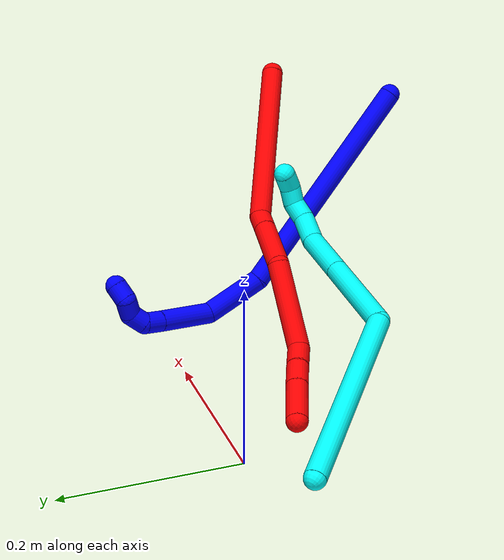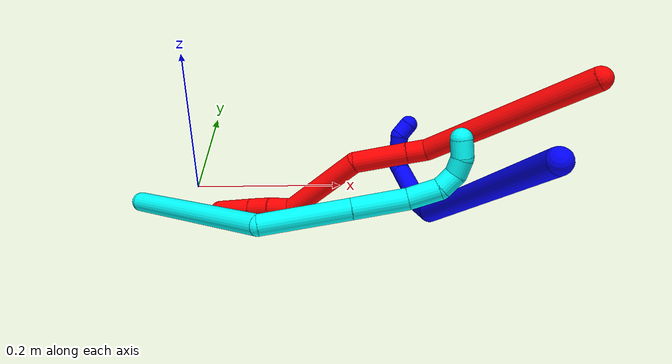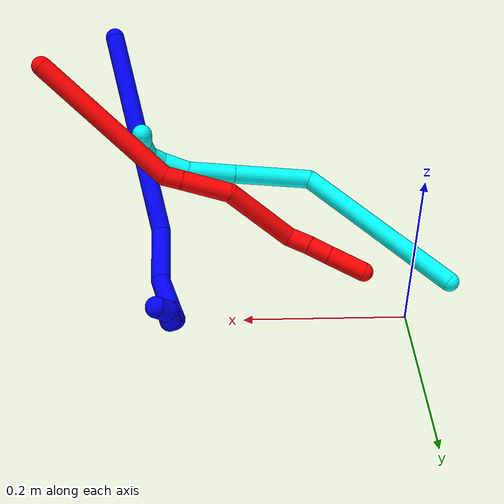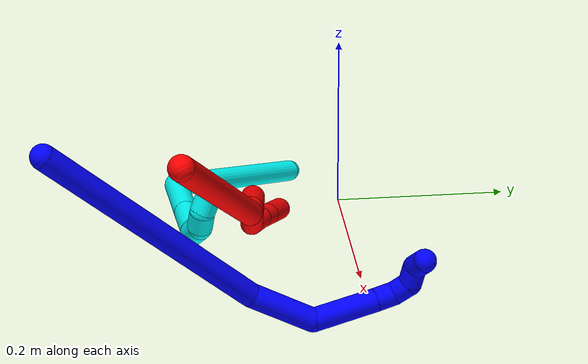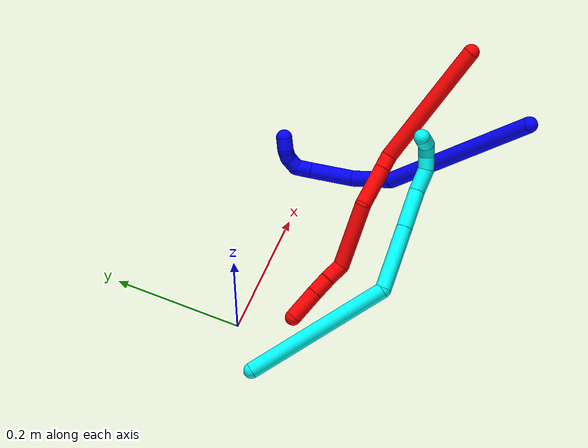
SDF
<sdf version="1.7">
 <world name="default">
  <model name="photoneo_s_sensor">
   <static>1</static>
   <pose>0 0 2 1.57079 1.57079 3.14159</pose>
   <link name="link">
    <inertial><mass>0.1</mass></inertial>
    <sensor name="sensor" type="depth">
     <update_rate>30</update_rate>
     <camera>
      <horizontal_fov>1.22</horizontal_fov>
      <image><width>1920</width><height>1200</height><format>B8G8R8</format></image>
      <clip><near>0.1</near><far>4</far></clip>
      <depth_camera><output>points</output></depth_camera>
     </camera>
     <plugin name="camera_plugin" filename="libgazebo_ros_depth_camera.so">
      <baseline>0.2</baseline>
      <alwaysOn>1</alwaysOn>
      <updateRate>0.0</updateRate>
      <cameraName>camera_ir</cameraName>
      <imageTopicName>/camera/color/image_raw</imageTopicName>
      <cameraInfoTopicName>/camera/color/camera_info</cameraInfoTopicName>
      <depthImageTopicName>/camera/depth/image_raw</depthImageTopicName>
      <depthImageCameraInfoTopicName>/camera/depth/camera_info</depthImageCameraInfoTopicName>
      <pointCloudTopicName>/camera/depth/points</pointCloudTopicName>
      <frameName>fr_optical</frameName>
      <pointCloudCutoff>0.1</pointCloudCutoff>
      <pointCloudCutoffMax>2.0</pointCloudCutoffMax>
      <distortionK1>0</distortionK1>
      <distortionK2>0</distortionK2>
      <distortionK3>0</distortionK3>
      <distortionT1>0</distortionT1>
      <distortionT2>0</distortionT2>
      <CxPrime>0</CxPrime>
      <Cx>0</Cx>
      <Cy>0</Cy>
      <focalLength>0</focalLength>
      <hackBaseline>0</hackBaseline>
     </plugin>
    </sensor>
   </link>
  </model>
  <model name="bin">
   <static>1</static>
   <link name="bottom">
    <collision name="collision-bottom">
     <pose>0 0 -0.01 0 -0 0</pose>
     <geometry><box><size>0.8 0.6 0.02</size></box></geometry>
     <surface>
      <friction><ode><mu>100</mu><mu2>100</mu2></ode></friction>
      <contact><collide_bitmask>65535</collide_bitmask></contact>
     </surface>
    </collision>
   </link>
   <link name="west_wall">
    <collision name="collision-west_wall">
     <pose>-0.41 0 0.1 0 -0 0</pose>
     <geometry><box><size>0.02 0.6 0.2</size></box></geometry>
     <surface>
      <friction><ode><mu>100</mu><mu2>100</mu2></ode></friction>
      <contact><collide_bitmask>65535</collide_bitmask></contact>
     </surface>
    </collision>
   </link>
   <link name="east_wall">
    <collision name="collision-east_wall">
     <pose>0.41 0 0.1 0 -0 0</pose>
     <geometry><box><size>0.02 0.6 0.2</size></box></geometry>
     <surface>
      <friction><ode><mu>100</mu><mu2>100</mu2></ode></friction>
      <contact><collide_bitmask>65535</collide_bitmask></contact>
     </surface>
    </collision>
   </link>
   <link name="south_wall">
    <collision name="collision-south_wall">
     <pose>0 -0.31 0.1 0 -0 0</pose>
     <geometry><box><size>0.8 0.02 0.2</size></box></geometry>
     <surface>
      <friction><ode><mu>100</mu><mu2>100</mu2></ode></friction>
      <contact><collide_bitmask>65535</collide_bitmask></contact>
     </surface>
    </collision>
   </link>
   <link name="north_wall">
    <collision name="collision-north_wall">
     <pose>0 0.31 0.1 0 -0 0</pose>
     <geometry><box><size>0.8 0.02 0.2</size></box></geometry>
     <surface>
      <friction><ode><mu>100</mu><mu2>100</mu2></ode></friction>
      <contact><collide_bitmask>65535</collide_bitmask></contact>
     </surface>
    </collision>
   </link>
  </model>
  <model name="1">
   <static>0</static>
   <link name="1">
    <collision name="collision-cylinder-e_1_1_4">
     <pose>0.068487 -0.022817 0.118233 0.190639 0.517133 0.050564</pose>
     <geometry><cylinder><radius>0.0125</radius><length>0.277057</length></cylinder></geometry>
     <surface>
      <friction><ode><mu>1.16</mu><mu2>1.16</mu2><slip1>0</slip1><slip2>0</slip2></ode></friction>
      <contact><ode><kp>1e+06</kp><kd>1</kd><max_vel>0</max_vel><min_depth>0.001</min_depth></ode></contact>
     </surface>
    </collision>
    <visual name="visual-cylinder-e_1_1_4">
     <pose>0.068487 -0.022817 0.118233 0.190639 0.517133 0.050564</pose>
     <geometry><cylinder><radius>0.0125</radius><length>0.277057</length></cylinder></geometry>
     <material><ambient>0 0 1 1</ambient></material>
    </visual>
    <collision name="collision-cylinder-e_2_4_5">
     <pose>0.15716 -0.039245 0.265296 -0.218069 0.599624 -0.067654</pose>
     <geometry><cylinder><radius>0.0125</radius><length>0.071538</length></cylinder></geometry>
     <surface>
      <friction><ode><mu>1.16</mu><mu2>1.16</mu2><slip1>0</slip1><slip2>0</slip2></ode></friction>
      <contact><ode><kp>1e+06</kp><kd>1</kd><max_vel>0</max_vel><min_depth>0.001</min_depth></ode></contact>
     </surface>
    </collision>
    <visual name="visual-cylinder-e_2_4_5">
     <pose>0.15716 -0.039245 0.265296 -0.218069 0.599624 -0.067654</pose>
     <geometry><cylinder><radius>0.0125</radius><length>0.071538</length></cylinder></geometry>
     <material><ambient>0 0 1 1</ambient></material>
    </visual>
    <collision name="collision-cylinder-e_3_5_6">
     <pose>0.208787 -0.022091 0.303333 -0.863297 1.14748 -0.578648</pose>
     <geometry><cylinder><radius>0.0125</radius><length>0.068971</length></cylinder></geometry>
     <surface>
      <friction><ode><mu>1.16</mu><mu2>1.16</mu2><slip1>0</slip1><slip2>0</slip2></ode></friction>
      <contact><ode><kp>1e+06</kp><kd>1</kd><max_vel>0</max_vel><min_depth>0.001</min_depth></ode></contact>
     </surface>
    </collision>
    <visual name="visual-cylinder-e_3_5_6">
     <pose>0.208787 -0.022091 0.303333 -0.863297 1.14748 -0.578648</pose>
     <geometry><cylinder><radius>0.0125</radius><length>0.068971</length></cylinder></geometry>
     <material><ambient>0 0 1 1</ambient></material>
    </visual>
    <collision name="collision-cylinder-e_4_6_7">
     <pose>0.25038 -0.007744 0.31514 -0.942678 1.15973 -0.644359</pose>
     <geometry><cylinder><radius>0.0125</radius><length>0.022148</length></cylinder></geometry>
     <surface>
      <friction><ode><mu>1.16</mu><mu2>1.16</mu2><slip1>0</slip1><slip2>0</slip2></ode></friction>
      <contact><ode><kp>1e+06</kp><kd>1</kd><max_vel>0</max_vel><min_depth>0.001</min_depth></ode></contact>
     </surface>
    </collision>
    <visual name="visual-cylinder-e_4_6_7">
     <pose>0.25038 -0.007744 0.31514 -0.942678 1.15973 -0.644359</pose>
     <geometry><cylinder><radius>0.0125</radius><length>0.022148</length></cylinder></geometry>
     <material><ambient>0 0 1 1</ambient></material>
    </visual>
    <collision name="collision-cylinder-e_5_7_8">
     <pose>0.266692 0.003777 0.316395 -1.73861 0.653049 -0.762461</pose>
     <geometry><cylinder><radius>0.0125</radius><length>0.02028</length></cylinder></geometry>
     <surface>
      <friction><ode><mu>1.16</mu><mu2>1.16</mu2><slip1>0</slip1><slip2>0</slip2></ode></friction>
      <contact><ode><kp>1e+06</kp><kd>1</kd><max_vel>0</max_vel><min_depth>0.001</min_depth></ode></contact>
     </surface>
    </collision>
    <visual name="visual-cylinder-e_5_7_8">
     <pose>0.266692 0.003777 0.316395 -1.73861 0.653049 -0.762461</pose>
     <geometry><cylinder><radius>0.0125</radius><length>0.02028</length></cylinder></geometry>
     <material><ambient>0 0 1 1</ambient></material>
    </visual>
    <collision name="collision-cylinder-e_6_8_9">
     <pose>0.276778 0.01747 0.307872 -2.46601 0.403267 -1.05408</pose>
     <geometry><cylinder><radius>0.0125</radius><length>0.020003</length></cylinder></geometry>
     <surface>
      <friction><ode><mu>1.16</mu><mu2>1.16</mu2><slip1>0</slip1><slip2>0</slip2></ode></friction>
      <contact><ode><kp>1e+06</kp><kd>1</kd><max_vel>0</max_vel><min_depth>0.001</min_depth></ode></contact>
     </surface>
    </collision>
    <visual name="visual-cylinder-e_6_8_9">
     <pose>0.276778 0.01747 0.307872 -2.46601 0.403267 -1.05408</pose>
     <geometry><cylinder><radius>0.0125</radius><length>0.020003</length></cylinder></geometry>
     <material><ambient>0 0 1 1</ambient></material>
    </visual>
    <collision name="collision-cylinder-e_7_9_2">
     <pose>0.281309 0.032905 0.298263 -1.81667 0.060602 -0.077674</pose>
     <geometry><cylinder><radius>0.0125</radius><length>0.020003</length></cylinder></geometry>
     <surface>
      <friction><ode><mu>1.16</mu><mu2>1.16</mu2><slip1>0</slip1><slip2>0</slip2></ode></friction>
      <contact><ode><kp>1e+06</kp><kd>1</kd><max_vel>0</max_vel><min_depth>0.001</min_depth></ode></contact>
     </surface>
    </collision>
    <visual name="visual-cylinder-e_7_9_2">
     <pose>0.281309 0.032905 0.298263 -1.81667 0.060602 -0.077674</pose>
     <geometry><cylinder><radius>0.0125</radius><length>0.020003</length></cylinder></geometry>
     <material><ambient>0 0 1 1</ambient></material>
    </visual>
    <collision name="collision-sphere-2">
     <pose>0.281915 0.042588 0.295833 0 -0 0</pose>
     <geometry><sphere><radius>0.0125</radius></sphere></geometry>
     <surface>
      <friction><ode><mu>1.16</mu><mu2>1.16</mu2><slip1>0</slip1><slip2>0</slip2></ode></friction>
      <contact><ode><kp>1e+06</kp><kd>1</kd><max_vel>0</max_vel><min_depth>0.001</min_depth></ode></contact>
     </surface>
    </collision>
    <visual name="visual-sphere-2">
     <pose>0.281915 0.042588 0.295833 0 -0 0</pose>
     <geometry><sphere><radius>0.0125</radius></sphere></geometry>
     <material><ambient>0 0 1 1</ambient></material>
    </visual>
    <collision name="collision-sphere-9">
     <pose>0.280703 0.023222 0.300693 0 -0 0</pose>
     <geometry><sphere><radius>0.0125</radius></sphere></geometry>
     <surface>
      <friction><ode><mu>1.16</mu><mu2>1.16</mu2><slip1>0</slip1><slip2>0</slip2></ode></friction>
      <contact><ode><kp>1e+06</kp><kd>1</kd><max_vel>0</max_vel><min_depth>0.001</min_depth></ode></contact>
     </surface>
    </collision>
    <visual name="visual-sphere-9">
     <pose>0.280703 0.023222 0.300693 0 -0 0</pose>
     <geometry><sphere><radius>0.0125</radius></sphere></geometry>
     <material><ambient>0 0 1 1</ambient></material>
    </visual>
    <collision name="collision-sphere-4">
     <pose>0.136974 -0.045634 0.236466 0 -0 0</pose>
     <geometry><sphere><radius>0.0125</radius></sphere></geometry>
     <surface>
      <friction><ode><mu>1.16</mu><mu2>1.16</mu2><slip1>0</slip1><slip2>0</slip2></ode></friction>
      <contact><ode><kp>1e+06</kp><kd>1</kd><max_vel>0</max_vel><min_depth>0.001</min_depth></ode></contact>
     </surface>
    </collision>
    <visual name="visual-sphere-4">
     <pose>0.136974 -0.045634 0.236466 0 -0 0</pose>
     <geometry><sphere><radius>0.0125</radius></sphere></geometry>
     <material><ambient>0 0 1 1</ambient></material>
    </visual>
    <collision name="collision-sphere-1">
     <geometry><sphere><radius>0.0125</radius></sphere></geometry>
     <surface>
      <friction><ode><mu>1.16</mu><mu2>1.16</mu2><slip1>0</slip1><slip2>0</slip2></ode></friction>
      <contact><ode><kp>1e+06</kp><kd>1</kd><max_vel>0</max_vel><min_depth>0.001</min_depth></ode></contact>
     </surface>
    </collision>
    <visual name="visual-sphere-1">
     <geometry><sphere><radius>0.0125</radius></sphere></geometry>
     <material><ambient>0 0 1 1</ambient></material>
    </visual>
    <collision name="collision-sphere-8">
     <pose>0.272854 0.011717 0.31505 0 -0 0</pose>
     <geometry><sphere><radius>0.0125</radius></sphere></geometry>
     <surface>
      <friction><ode><mu>1.16</mu><mu2>1.16</mu2><slip1>0</slip1><slip2>0</slip2></ode></friction>
      <contact><ode><kp>1e+06</kp><kd>1</kd><max_vel>0</max_vel><min_depth>0.001</min_depth></ode></contact>
     </surface>
    </collision>
    <visual name="visual-sphere-8">
     <pose>0.272854 0.011717 0.31505 0 -0 0</pose>
     <geometry><sphere><radius>0.0125</radius></sphere></geometry>
     <material><ambient>0 0 1 1</ambient></material>
    </visual>
    <collision name="collision-sphere-5">
     <pose>0.177345 -0.032857 0.294125 0 -0 0</pose>
     <geometry><sphere><radius>0.0125</radius></sphere></geometry>
     <surface>
      <friction><ode><mu>1.16</mu><mu2>1.16</mu2><slip1>0</slip1><slip2>0</slip2></ode></friction>
      <contact><ode><kp>1e+06</kp><kd>1</kd><max_vel>0</max_vel><min_depth>0.001</min_depth></ode></contact>
     </surface>
    </collision>
    <visual name="visual-sphere-5">
     <pose>0.177345 -0.032857 0.294125 0 -0 0</pose>
     <geometry><sphere><radius>0.0125</radius></sphere></geometry>
     <material><ambient>0 0 1 1</ambient></material>
    </visual>
    <collision name="collision-sphere-6">
     <pose>0.240228 -0.011325 0.31254 0 -0 0</pose>
     <geometry><sphere><radius>0.0125</radius></sphere></geometry>
     <surface>
      <friction><ode><mu>1.16</mu><mu2>1.16</mu2><slip1>0</slip1><slip2>0</slip2></ode></friction>
      <contact><ode><kp>1e+06</kp><kd>1</kd><max_vel>0</max_vel><min_depth>0.001</min_depth></ode></contact>
     </surface>
    </collision>
    <visual name="visual-sphere-6">
     <pose>0.240228 -0.011325 0.31254 0 -0 0</pose>
     <geometry><sphere><radius>0.0125</radius></sphere></geometry>
     <material><ambient>0 0 1 1</ambient></material>
    </visual>
    <collision name="collision-sphere-7">
     <pose>0.260531 -0.004164 0.31774 0 -0 0</pose>
     <geometry><sphere><radius>0.0125</radius></sphere></geometry>
     <surface>
      <friction><ode><mu>1.16</mu><mu2>1.16</mu2><slip1>0</slip1><slip2>0</slip2></ode></friction>
      <contact><ode><kp>1e+06</kp><kd>1</kd><max_vel>0</max_vel><min_depth>0.001</min_depth></ode></contact>
     </surface>
    </collision>
    <visual name="visual-sphere-7">
     <pose>0.260531 -0.004164 0.31774 0 -0 0</pose>
     <geometry><sphere><radius>0.0125</radius></sphere></geometry>
     <material><ambient>0 0 1 1</ambient></material>
    </visual>
    <inertial>
     <pose>0.133471 -0.01948 0.196356 0 -0 0</pose>
     <mass>0.5</mass>
     <inertia>
      <ixx>0.001678</ixx>
      <ixy>0</ixy>
      <ixz>0</ixz>
      <iyy>0.001889</iyy>
      <iyz>0</iyz>
      <izz>-0.000633</izz>
     </inertia>
    </inertial>
   </link>
   <pose>0.369768 -0.318902 0.234866 2.65435 -0.247799 2.24525</pose>
  </model>
  <model name="2">
   <static>0</static>
   <link name="2">
    <collision name="collision-cylinder-e_1_1_4">
     <pose>-0.09896 0.009844 0.02065 -0.444846 -1.34361 0.355888</pose>
     <geometry><cylinder><radius>0.0125</radius><length>0.20314</length></cylinder></geometry>
     <surface>
      <friction><ode><mu>1.16</mu><mu2>1.16</mu2><slip1>0</slip1><slip2>0</slip2></ode></friction>
      <contact><ode><kp>1e+06</kp><kd>1</kd><max_vel>0</max_vel><min_depth>0.001</min_depth></ode></contact>
     </surface>
    </collision>
    <visual name="visual-cylinder-e_1_1_4">
     <pose>-0.09896 0.009844 0.02065 -0.444846 -1.34361 0.355888</pose>
     <geometry><cylinder><radius>0.0125</radius><length>0.20314</length></cylinder></geometry>
     <material><ambient>1 0 0 1</ambient></material>
    </visual>
    <collision name="collision-cylinder-e_2_4_5">
     <pose>-0.208937 0.021377 0.038067 -2.66032 -1.25105 2.48657</pose>
     <geometry><cylinder><radius>0.0125</radius><length>0.02321</length></cylinder></geometry>
     <surface>
      <friction><ode><mu>1.16</mu><mu2>1.16</mu2><slip1>0</slip1><slip2>0</slip2></ode></friction>
      <contact><ode><kp>1e+06</kp><kd>1</kd><max_vel>0</max_vel><min_depth>0.001</min_depth></ode></contact>
     </surface>
    </collision>
    <visual name="visual-cylinder-e_2_4_5">
     <pose>-0.208937 0.021377 0.038067 -2.66032 -1.25105 2.48657</pose>
     <geometry><cylinder><radius>0.0125</radius><length>0.02321</length></cylinder></geometry>
     <material><ambient>1 0 0 1</ambient></material>
    </visual>
    <collision name="collision-cylinder-e_3_5_6">
     <pose>-0.24988 0.027774 0.02658 -2.62326 -1.26335 2.44631</pose>
     <geometry><cylinder><radius>0.0125</radius><length>0.062798</length></cylinder></geometry>
     <surface>
      <friction><ode><mu>1.16</mu><mu2>1.16</mu2><slip1>0</slip1><slip2>0</slip2></ode></friction>
      <contact><ode><kp>1e+06</kp><kd>1</kd><max_vel>0</max_vel><min_depth>0.001</min_depth></ode></contact>
     </surface>
    </collision>
    <visual name="visual-cylinder-e_3_5_6">
     <pose>-0.24988 0.027774 0.02658 -2.62326 -1.26335 2.44631</pose>
     <geometry><cylinder><radius>0.0125</radius><length>0.062798</length></cylinder></geometry>
     <material><ambient>1 0 0 1</ambient></material>
    </visual>
    <collision name="collision-cylinder-e_4_6_7">
     <pose>-0.326328 0.052956 0.025137 -1.24967 -1.1365 0.863118</pose>
     <geometry><cylinder><radius>0.0125</radius><length>0.102564</length></cylinder></geometry>
     <surface>
      <friction><ode><mu>1.16</mu><mu2>1.16</mu2><slip1>0</slip1><slip2>0</slip2></ode></friction>
      <contact><ode><kp>1e+06</kp><kd>1</kd><max_vel>0</max_vel><min_depth>0.001</min_depth></ode></contact>
     </surface>
    </collision>
    <visual name="visual-cylinder-e_4_6_7">
     <pose>-0.326328 0.052956 0.025137 -1.24967 -1.1365 0.863118</pose>
     <geometry><cylinder><radius>0.0125</radius><length>0.102564</length></cylinder></geometry>
     <material><ambient>1 0 0 1</ambient></material>
    </visual>
    <collision name="collision-cylinder-e_5_7_8">
     <pose>-0.387399 0.07151 0.029731 2.42762 -1.37183 -2.28647</pose>
     <geometry><cylinder><radius>0.0125</radius><length>0.029684</length></cylinder></geometry>
     <surface>
      <friction><ode><mu>1.16</mu><mu2>1.16</mu2><slip1>0</slip1><slip2>0</slip2></ode></friction>
      <contact><ode><kp>1e+06</kp><kd>1</kd><max_vel>0</max_vel><min_depth>0.001</min_depth></ode></contact>
     </surface>
    </collision>
    <visual name="visual-cylinder-e_5_7_8">
     <pose>-0.387399 0.07151 0.029731 2.42762 -1.37183 -2.28647</pose>
     <geometry><cylinder><radius>0.0125</radius><length>0.029684</length></cylinder></geometry>
     <material><ambient>1 0 0 1</ambient></material>
    </visual>
    <collision name="collision-cylinder-e_6_8_9">
     <pose>-0.41621 0.068749 0.026382 2.50307 -1.47228 -2.4419</pose>
     <geometry><cylinder><radius>0.0125</radius><length>0.028663</length></cylinder></geometry>
     <surface>
      <friction><ode><mu>1.16</mu><mu2>1.16</mu2><slip1>0</slip1><slip2>0</slip2></ode></friction>
      <contact><ode><kp>1e+06</kp><kd>1</kd><max_vel>0</max_vel><min_depth>0.001</min_depth></ode></contact>
     </surface>
    </collision>
    <visual name="visual-cylinder-e_6_8_9">
     <pose>-0.41621 0.068749 0.026382 2.50307 -1.47228 -2.4419</pose>
     <geometry><cylinder><radius>0.0125</radius><length>0.028663</length></cylinder></geometry>
     <material><ambient>1 0 0 1</ambient></material>
    </visual>
    <collision name="collision-cylinder-e_7_9_2">
     <pose>-0.45533 0.067097 0.023027 2.79126 -1.47589 -2.75714</pose>
     <geometry><cylinder><radius>0.0125</radius><length>0.049942</length></cylinder></geometry>
     <surface>
      <friction><ode><mu>1.16</mu><mu2>1.16</mu2><slip1>0</slip1><slip2>0</slip2></ode></friction>
      <contact><ode><kp>1e+06</kp><kd>1</kd><max_vel>0</max_vel><min_depth>0.001</min_depth></ode></contact>
     </surface>
    </collision>
    <visual name="visual-cylinder-e_7_9_2">
     <pose>-0.45533 0.067097 0.023027 2.79126 -1.47589 -2.75714</pose>
     <geometry><cylinder><radius>0.0125</radius><length>0.049942</length></cylinder></geometry>
     <material><ambient>1 0 0 1</ambient></material>
    </visual>
    <collision name="collision-sphere-2">
     <pose>-0.480189 0.066285 0.020805 0 -0 0</pose>
     <geometry><sphere><radius>0.0125</radius></sphere></geometry>
     <surface>
      <friction><ode><mu>1.16</mu><mu2>1.16</mu2><slip1>0</slip1><slip2>0</slip2></ode></friction>
      <contact><ode><kp>1e+06</kp><kd>1</kd><max_vel>0</max_vel><min_depth>0.001</min_depth></ode></contact>
     </surface>
    </collision>
    <visual name="visual-sphere-2">
     <pose>-0.480189 0.066285 0.020805 0 -0 0</pose>
     <geometry><sphere><radius>0.0125</radius></sphere></geometry>
     <material><ambient>1 0 0 1</ambient></material>
    </visual>
    <collision name="collision-sphere-9">
     <pose>-0.430471 0.067909 0.02525 0 -0 0</pose>
     <geometry><sphere><radius>0.0125</radius></sphere></geometry>
     <surface>
      <friction><ode><mu>1.16</mu><mu2>1.16</mu2><slip1>0</slip1><slip2>0</slip2></ode></friction>
      <contact><ode><kp>1e+06</kp><kd>1</kd><max_vel>0</max_vel><min_depth>0.001</min_depth></ode></contact>
     </surface>
    </collision>
    <visual name="visual-sphere-9">
     <pose>-0.430471 0.067909 0.02525 0 -0 0</pose>
     <geometry><sphere><radius>0.0125</radius></sphere></geometry>
     <material><ambient>1 0 0 1</ambient></material>
    </visual>
    <collision name="collision-sphere-4">
     <pose>-0.19792 0.019689 0.041301 0 -0 0</pose>
     <geometry><sphere><radius>0.0125</radius></sphere></geometry>
     <surface>
      <friction><ode><mu>1.16</mu><mu2>1.16</mu2><slip1>0</slip1><slip2>0</slip2></ode></friction>
      <contact><ode><kp>1e+06</kp><kd>1</kd><max_vel>0</max_vel><min_depth>0.001</min_depth></ode></contact>
     </surface>
    </collision>
    <visual name="visual-sphere-4">
     <pose>-0.19792 0.019689 0.041301 0 -0 0</pose>
     <geometry><sphere><radius>0.0125</radius></sphere></geometry>
     <material><ambient>1 0 0 1</ambient></material>
    </visual>
    <collision name="collision-sphere-1">
     <geometry><sphere><radius>0.0125</radius></sphere></geometry>
     <surface>
      <friction><ode><mu>1.16</mu><mu2>1.16</mu2><slip1>0</slip1><slip2>0</slip2></ode></friction>
      <contact><ode><kp>1e+06</kp><kd>1</kd><max_vel>0</max_vel><min_depth>0.001</min_depth></ode></contact>
     </surface>
    </collision>
    <visual name="visual-sphere-1">
     <geometry><sphere><radius>0.0125</radius></sphere></geometry>
     <material><ambient>1 0 0 1</ambient></material>
    </visual>
    <collision name="collision-sphere-8">
     <pose>-0.401948 0.069589 0.027513 0 -0 0</pose>
     <geometry><sphere><radius>0.0125</radius></sphere></geometry>
     <surface>
      <friction><ode><mu>1.16</mu><mu2>1.16</mu2><slip1>0</slip1><slip2>0</slip2></ode></friction>
      <contact><ode><kp>1e+06</kp><kd>1</kd><max_vel>0</max_vel><min_depth>0.001</min_depth></ode></contact>
     </surface>
    </collision>
    <visual name="visual-sphere-8">
     <pose>-0.401948 0.069589 0.027513 0 -0 0</pose>
     <geometry><sphere><radius>0.0125</radius></sphere></geometry>
     <material><ambient>1 0 0 1</ambient></material>
    </visual>
    <collision name="collision-sphere-5">
     <pose>-0.219954 0.023066 0.034834 0 -0 0</pose>
     <geometry><sphere><radius>0.0125</radius></sphere></geometry>
     <surface>
      <friction><ode><mu>1.16</mu><mu2>1.16</mu2><slip1>0</slip1><slip2>0</slip2></ode></friction>
      <contact><ode><kp>1e+06</kp><kd>1</kd><max_vel>0</max_vel><min_depth>0.001</min_depth></ode></contact>
     </surface>
    </collision>
    <visual name="visual-sphere-5">
     <pose>-0.219954 0.023066 0.034834 0 -0 0</pose>
     <geometry><sphere><radius>0.0125</radius></sphere></geometry>
     <material><ambient>1 0 0 1</ambient></material>
    </visual>
    <collision name="collision-sphere-6">
     <pose>-0.279807 0.032481 0.018326 0 -0 0</pose>
     <geometry><sphere><radius>0.0125</radius></sphere></geometry>
     <surface>
      <friction><ode><mu>1.16</mu><mu2>1.16</mu2><slip1>0</slip1><slip2>0</slip2></ode></friction>
      <contact><ode><kp>1e+06</kp><kd>1</kd><max_vel>0</max_vel><min_depth>0.001</min_depth></ode></contact>
     </surface>
    </collision>
    <visual name="visual-sphere-6">
     <pose>-0.279807 0.032481 0.018326 0 -0 0</pose>
     <geometry><sphere><radius>0.0125</radius></sphere></geometry>
     <material><ambient>1 0 0 1</ambient></material>
    </visual>
    <collision name="collision-sphere-7">
     <pose>-0.37285 0.073431 0.031948 0 -0 0</pose>
     <geometry><sphere><radius>0.0125</radius></sphere></geometry>
     <surface>
      <friction><ode><mu>1.16</mu><mu2>1.16</mu2><slip1>0</slip1><slip2>0</slip2></ode></friction>
      <contact><ode><kp>1e+06</kp><kd>1</kd><max_vel>0</max_vel><min_depth>0.001</min_depth></ode></contact>
     </surface>
    </collision>
    <visual name="visual-sphere-7">
     <pose>-0.37285 0.073431 0.031948 0 -0 0</pose>
     <geometry><sphere><radius>0.0125</radius></sphere></geometry>
     <material><ambient>1 0 0 1</ambient></material>
    </visual>
    <inertial>
     <pose>-0.240566 0.034231 0.024229 0 -0 0</pose>
     <mass>0.5</mass>
     <inertia>
      <ixx>0.000219</ixx>
      <ixy>0</ixy>
      <ixz>0</ixz>
      <iyy>0.000919</iyy>
      <iyz>0</iyz>
      <izz>0.000709</izz>
     </inertia>
    </inertial>
   </link>
   <pose>0.445884 -0.195251 0.251449 -2.52744 -0.403785 -0.390455</pose>
  </model>
  <model name="3">
   <static>0</static>
   <link name="3">
    <collision name="collision-cylinder-e_1_1_4">
     <pose>0.024534 0.011655 0.112837 -0.102924 0.212995 -0.011012</pose>
     <geometry><cylinder><radius>0.0125</radius><length>0.232121</length></cylinder></geometry>
     <surface>
      <friction><ode><mu>1.16</mu><mu2>1.16</mu2><slip1>0</slip1><slip2>0</slip2></ode></friction>
      <contact><ode><kp>1e+06</kp><kd>1</kd><max_vel>0</max_vel><min_depth>0.001</min_depth></ode></contact>
     </surface>
    </collision>
    <visual name="visual-cylinder-e_1_1_4">
     <pose>0.024534 0.011655 0.112837 -0.102924 0.212995 -0.011012</pose>
     <geometry><cylinder><radius>0.0125</radius><length>0.232121</length></cylinder></geometry>
     <material><ambient>0.003922 1 0.996078 1</ambient></material>
    </visual>
    <collision name="collision-cylinder-e_2_4_5">
     <pose>0.076383 0.056829 0.255182 -0.848973 0.548963 -0.253175</pose>
     <geometry><cylinder><radius>0.0125</radius><length>0.104696</length></cylinder></geometry>
     <surface>
      <friction><ode><mu>1.16</mu><mu2>1.16</mu2><slip1>0</slip1><slip2>0</slip2></ode></friction>
      <contact><ode><kp>1e+06</kp><kd>1</kd><max_vel>0</max_vel><min_depth>0.001</min_depth></ode></contact>
     </surface>
    </collision>
    <visual name="visual-cylinder-e_2_4_5">
     <pose>0.076383 0.056829 0.255182 -0.848973 0.548963 -0.253175</pose>
     <geometry><cylinder><radius>0.0125</radius><length>0.104696</length></cylinder></geometry>
     <material><ambient>0.003922 1 0.996078 1</ambient></material>
    </visual>
    <collision name="collision-cylinder-e_3_5_6">
     <pose>0.120147 0.110786 0.302483 -0.854414 0.545549 -0.253343</pose>
     <geometry><cylinder><radius>0.0125</radius><length>0.063401</length></cylinder></geometry>
     <surface>
      <friction><ode><mu>1.16</mu><mu2>1.16</mu2><slip1>0</slip1><slip2>0</slip2></ode></friction>
      <contact><ode><kp>1e+06</kp><kd>1</kd><max_vel>0</max_vel><min_depth>0.001</min_depth></ode></contact>
     </surface>
    </collision>
    <visual name="visual-cylinder-e_3_5_6">
     <pose>0.120147 0.110786 0.302483 -0.854414 0.545549 -0.253343</pose>
     <geometry><cylinder><radius>0.0125</radius><length>0.063401</length></cylinder></geometry>
     <material><ambient>0.003922 1 0.996078 1</ambient></material>
    </visual>
    <collision name="collision-cylinder-e_4_6_7">
     <pose>0.141994 0.143017 0.333309 -0.735586 0.297945 -0.115534</pose>
     <geometry><cylinder><radius>0.0125</radius><length>0.036771</length></cylinder></geometry>
     <surface>
      <friction><ode><mu>1.16</mu><mu2>1.16</mu2><slip1>0</slip1><slip2>0</slip2></ode></friction>
      <contact><ode><kp>1e+06</kp><kd>1</kd><max_vel>0</max_vel><min_depth>0.001</min_depth></ode></contact>
     </surface>
    </collision>
    <visual name="visual-cylinder-e_4_6_7">
     <pose>0.141994 0.143017 0.333309 -0.735586 0.297945 -0.115534</pose>
     <geometry><cylinder><radius>0.0125</radius><length>0.036771</length></cylinder></geometry>
     <material><ambient>0.003922 1 0.996078 1</ambient></material>
    </visual>
    <collision name="collision-cylinder-e_5_7_8">
     <pose>0.147371 0.164909 0.351416 -1.10509 -0.001762 0.001087</pose>
     <geometry><cylinder><radius>0.0125</radius><length>0.022604</length></cylinder></geometry>
     <surface>
      <friction><ode><mu>1.16</mu><mu2>1.16</mu2><slip1>0</slip1><slip2>0</slip2></ode></friction>
      <contact><ode><kp>1e+06</kp><kd>1</kd><max_vel>0</max_vel><min_depth>0.001</min_depth></ode></contact>
     </surface>
    </collision>
    <visual name="visual-cylinder-e_5_7_8">
     <pose>0.147371 0.164909 0.351416 -1.10509 -0.001762 0.001087</pose>
     <geometry><cylinder><radius>0.0125</radius><length>0.022604</length></cylinder></geometry>
     <material><ambient>0.003922 1 0.996078 1</ambient></material>
    </visual>
    <collision name="collision-cylinder-e_6_8_9">
     <pose>0.141909 0.182281 0.36112 -1.00403 -0.563066 0.314883</pose>
     <geometry><cylinder><radius>0.0125</radius><length>0.02039</length></cylinder></geometry>
     <surface>
      <friction><ode><mu>1.16</mu><mu2>1.16</mu2><slip1>0</slip1><slip2>0</slip2></ode></friction>
      <contact><ode><kp>1e+06</kp><kd>1</kd><max_vel>0</max_vel><min_depth>0.001</min_depth></ode></contact>
     </surface>
    </collision>
    <visual name="visual-cylinder-e_6_8_9">
     <pose>0.141909 0.182281 0.36112 -1.00403 -0.563066 0.314883</pose>
     <geometry><cylinder><radius>0.0125</radius><length>0.02039</length></cylinder></geometry>
     <material><ambient>0.003922 1 0.996078 1</ambient></material>
    </visual>
    <collision name="collision-cylinder-e_7_9_2">
     <pose>0.129091 0.196284 0.366429 -1.47004 -0.828667 0.756824</pose>
     <geometry><cylinder><radius>0.0125</radius><length>0.020016</length></cylinder></geometry>
     <surface>
      <friction><ode><mu>1.16</mu><mu2>1.16</mu2><slip1>0</slip1><slip2>0</slip2></ode></friction>
      <contact><ode><kp>1e+06</kp><kd>1</kd><max_vel>0</max_vel><min_depth>0.001</min_depth></ode></contact>
     </surface>
    </collision>
    <visual name="visual-cylinder-e_7_9_2">
     <pose>0.129091 0.196284 0.366429 -1.47004 -0.828667 0.756824</pose>
     <geometry><cylinder><radius>0.0125</radius><length>0.020016</length></cylinder></geometry>
     <material><ambient>0.003922 1 0.996078 1</ambient></material>
    </visual>
    <collision name="collision-sphere-2">
     <pose>0.121714 0.203013 0.36711 0 -0 0</pose>
     <geometry><sphere><radius>0.0125</radius></sphere></geometry>
     <surface>
      <friction><ode><mu>1.16</mu><mu2>1.16</mu2><slip1>0</slip1><slip2>0</slip2></ode></friction>
      <contact><ode><kp>1e+06</kp><kd>1</kd><max_vel>0</max_vel><min_depth>0.001</min_depth></ode></contact>
     </surface>
    </collision>
    <visual name="visual-sphere-2">
     <pose>0.121714 0.203013 0.36711 0 -0 0</pose>
     <geometry><sphere><radius>0.0125</radius></sphere></geometry>
     <material><ambient>0.003922 1 0.996078 1</ambient></material>
    </visual>
    <collision name="collision-sphere-9">
     <pose>0.136467 0.189554 0.365749 0 -0 0</pose>
     <geometry><sphere><radius>0.0125</radius></sphere></geometry>
     <surface>
      <friction><ode><mu>1.16</mu><mu2>1.16</mu2><slip1>0</slip1><slip2>0</slip2></ode></friction>
      <contact><ode><kp>1e+06</kp><kd>1</kd><max_vel>0</max_vel><min_depth>0.001</min_depth></ode></contact>
     </surface>
    </collision>
    <visual name="visual-sphere-9">
     <pose>0.136467 0.189554 0.365749 0 -0 0</pose>
     <geometry><sphere><radius>0.0125</radius></sphere></geometry>
     <material><ambient>0.003922 1 0.996078 1</ambient></material>
    </visual>
    <collision name="collision-sphere-4">
     <pose>0.049068 0.02331 0.225675 0 -0 0</pose>
     <geometry><sphere><radius>0.0125</radius></sphere></geometry>
     <surface>
      <friction><ode><mu>1.16</mu><mu2>1.16</mu2><slip1>0</slip1><slip2>0</slip2></ode></friction>
      <contact><ode><kp>1e+06</kp><kd>1</kd><max_vel>0</max_vel><min_depth>0.001</min_depth></ode></contact>
     </surface>
    </collision>
    <visual name="visual-sphere-4">
     <pose>0.049068 0.02331 0.225675 0 -0 0</pose>
     <geometry><sphere><radius>0.0125</radius></sphere></geometry>
     <material><ambient>0.003922 1 0.996078 1</ambient></material>
    </visual>
    <collision name="collision-sphere-1">
     <geometry><sphere><radius>0.0125</radius></sphere></geometry>
     <surface>
      <friction><ode><mu>1.16</mu><mu2>1.16</mu2><slip1>0</slip1><slip2>0</slip2></ode></friction>
      <contact><ode><kp>1e+06</kp><kd>1</kd><max_vel>0</max_vel><min_depth>0.001</min_depth></ode></contact>
     </surface>
    </collision>
    <visual name="visual-sphere-1">
     <geometry><sphere><radius>0.0125</radius></sphere></geometry>
     <material><ambient>0.003922 1 0.996078 1</ambient></material>
    </visual>
    <collision name="collision-sphere-8">
     <pose>0.147351 0.175007 0.356491 0 -0 0</pose>
     <geometry><sphere><radius>0.0125</radius></sphere></geometry>
     <surface>
      <friction><ode><mu>1.16</mu><mu2>1.16</mu2><slip1>0</slip1><slip2>0</slip2></ode></friction>
      <contact><ode><kp>1e+06</kp><kd>1</kd><max_vel>0</max_vel><min_depth>0.001</min_depth></ode></contact>
     </surface>
    </collision>
    <visual name="visual-sphere-8">
     <pose>0.147351 0.175007 0.356491 0 -0 0</pose>
     <geometry><sphere><radius>0.0125</radius></sphere></geometry>
     <material><ambient>0.003922 1 0.996078 1</ambient></material>
    </visual>
    <collision name="collision-sphere-5">
     <pose>0.103698 0.090348 0.284689 0 -0 0</pose>
     <geometry><sphere><radius>0.0125</radius></sphere></geometry>
     <surface>
      <friction><ode><mu>1.16</mu><mu2>1.16</mu2><slip1>0</slip1><slip2>0</slip2></ode></friction>
      <contact><ode><kp>1e+06</kp><kd>1</kd><max_vel>0</max_vel><min_depth>0.001</min_depth></ode></contact>
     </surface>
    </collision>
    <visual name="visual-sphere-5">
     <pose>0.103698 0.090348 0.284689 0 -0 0</pose>
     <geometry><sphere><radius>0.0125</radius></sphere></geometry>
     <material><ambient>0.003922 1 0.996078 1</ambient></material>
    </visual>
    <collision name="collision-sphere-6">
     <pose>0.136596 0.131223 0.320278 0 -0 0</pose>
     <geometry><sphere><radius>0.0125</radius></sphere></geometry>
     <surface>
      <friction><ode><mu>1.16</mu><mu2>1.16</mu2><slip1>0</slip1><slip2>0</slip2></ode></friction>
      <contact><ode><kp>1e+06</kp><kd>1</kd><max_vel>0</max_vel><min_depth>0.001</min_depth></ode></contact>
     </surface>
    </collision>
    <visual name="visual-sphere-6">
     <pose>0.136596 0.131223 0.320278 0 -0 0</pose>
     <geometry><sphere><radius>0.0125</radius></sphere></geometry>
     <material><ambient>0.003922 1 0.996078 1</ambient></material>
    </visual>
    <collision name="collision-sphere-7">
     <pose>0.147391 0.154811 0.346341 0 -0 0</pose>
     <geometry><sphere><radius>0.0125</radius></sphere></geometry>
     <surface>
      <friction><ode><mu>1.16</mu><mu2>1.16</mu2><slip1>0</slip1><slip2>0</slip2></ode></friction>
      <contact><ode><kp>1e+06</kp><kd>1</kd><max_vel>0</max_vel><min_depth>0.001</min_depth></ode></contact>
     </surface>
    </collision>
    <visual name="visual-sphere-7">
     <pose>0.147391 0.154811 0.346341 0 -0 0</pose>
     <geometry><sphere><radius>0.0125</radius></sphere></geometry>
     <material><ambient>0.003922 1 0.996078 1</ambient></material>
    </visual>
    <inertial>
     <pose>0.070678 0.064622 0.213968 0 -0 0</pose>
     <mass>0.5</mass>
     <inertia>
      <ixx>0.001111</ixx>
      <ixy>0</ixy>
      <ixz>0</ixz>
      <iyy>0.001122</iyy>
      <iyz>0</iyz>
      <izz>-0.00045</izz>
     </inertia>
    </inertial>
   </link>
   <pose>-0.065688 -0.052265 0.011787 0.869499 0.876268 0.091179</pose>
  </model>
 </world>
</sdf>
